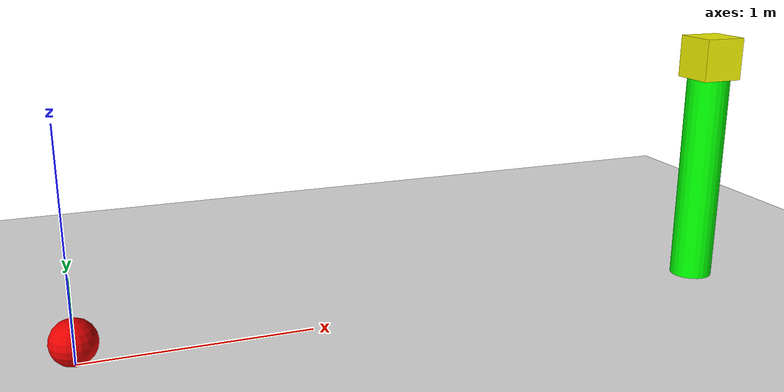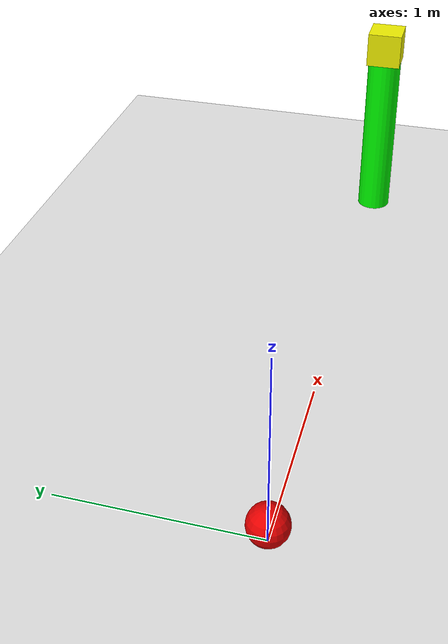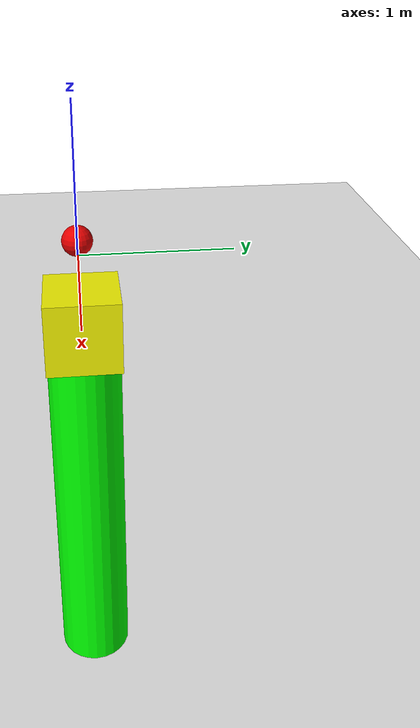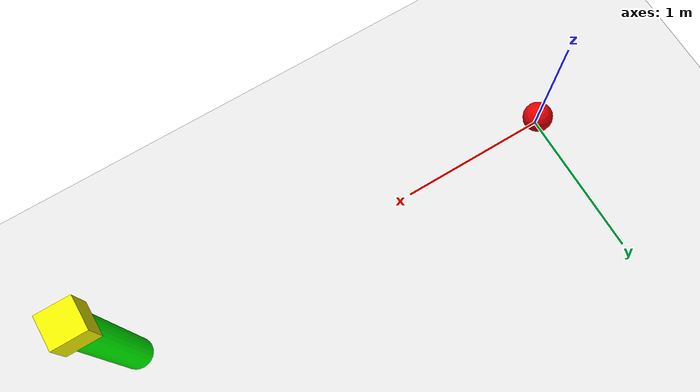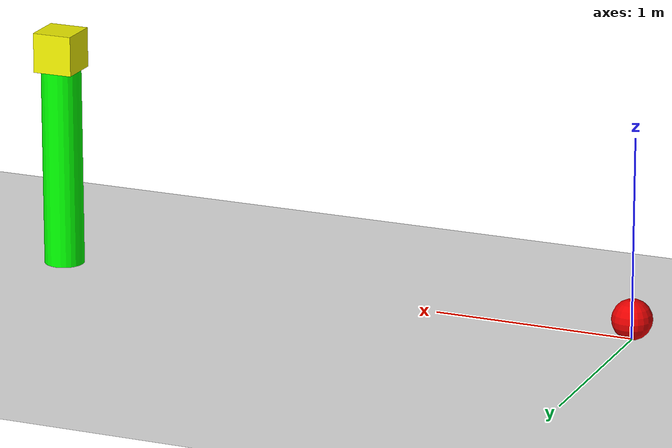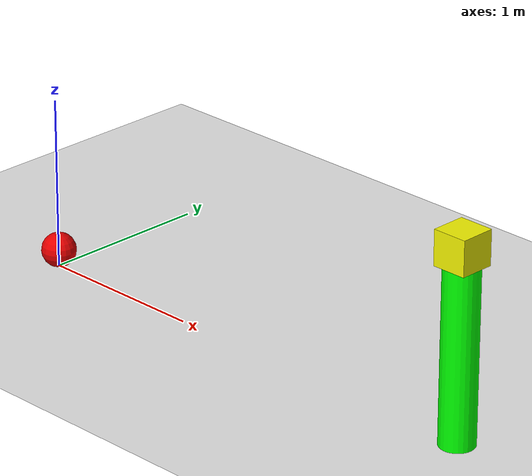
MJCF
<mujoco>
    <option gravity="0 0 -9.81" />
    <worldbody>
        <light diffuse=".5 .5 .5" pos="0 0 10" dir="0 0 -1" />
        <geom type="plane" size="10 10 0.1" rgba=".9 .9 .9 1" />
        <body pos="0 0 .1">
            <joint type="free" />
            <geom type="sphere" size=".1" rgba=".9 0 0 1" mass="1" />
        </body>
        <geom pos = "3 0 0.5" type="cylinder" size="0.1 0.5" rgba="0 1 0 1" mass="1"/>
        <body pos = "3 0 1.1">
            <joint type="free"/>
            <geom type="box" size=".1 .1 .1" rgba="0.95 0.95 0 1" mass="0.1"/>
        </body>
    </worldbody>
</mujoco>
